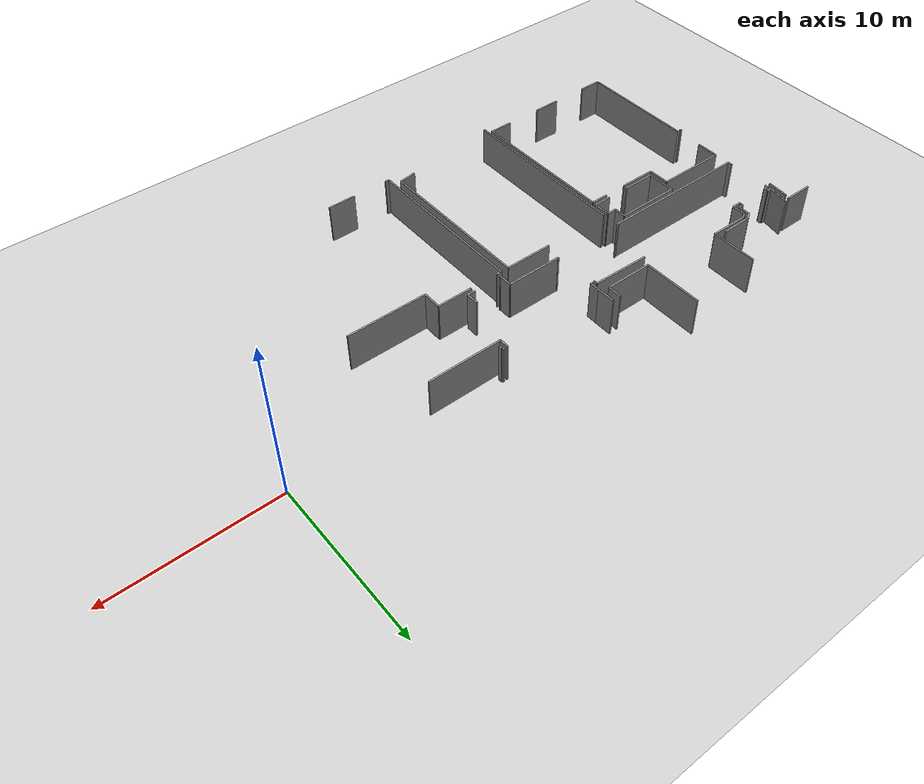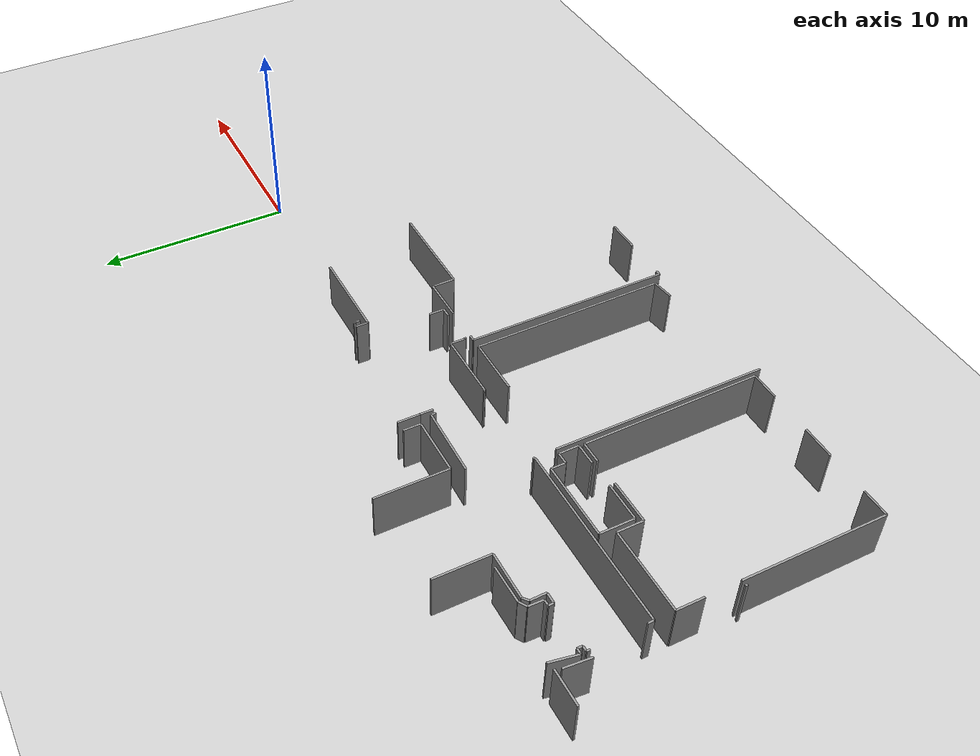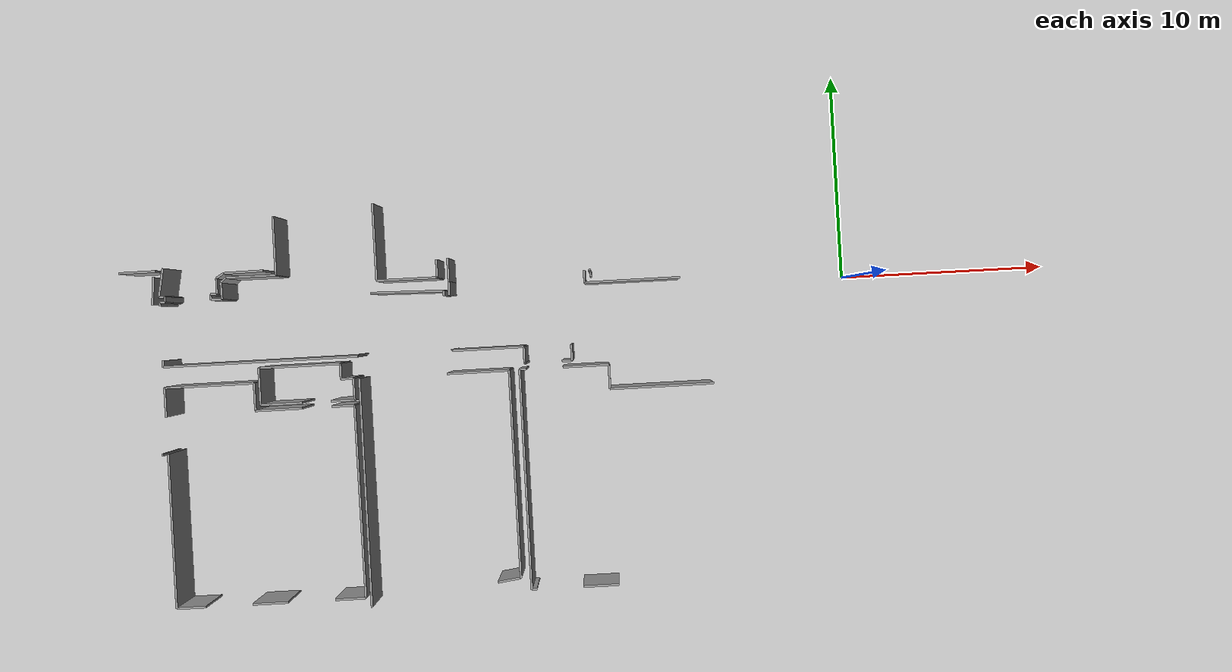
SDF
<sdf version="1.6">
 <world name="default">
  <model name="ground_plane">
   <static>1</static>
   <link name="link">
    <collision name="collision">
     <geometry><plane><normal>0 0 1</normal><size>100 100</size></plane></geometry>
     <surface><friction><ode><mu>100</mu><mu2>50</mu2></ode></friction></surface>
    </collision>
    <visual name="visual">
     <cast_shadows>0</cast_shadows>
     <geometry><plane><normal>0 0 1</normal><size>100 100</size></plane></geometry>
     <material>
      <script><uri>file://media/materials/scripts/gazebo.material</uri><name>Gazebo/Grey</name></script>
     </material>
    </visual>
   </link>
  </model>
  <model name="0510032268_A_40_1_102">
   <static>1</static>
   <link name="Wall_41">
    <collision name="Wall_41_Collision">
     <geometry><box><size>1.77971319931 0.1 2.5</size></box></geometry>
     <pose>0.889856599653 0 1.25 0 0 0</pose>
    </collision>
    <visual name="Wall_41_Visual">
     <pose>0.889856599653 0 1.25 0 0 0</pose>
     <geometry><box><size>1.77971319931 0.1 2.5</size></box></geometry>
     <material>
      <script><uri>file://media/materials/scripts/gazebo.material</uri><name>Gazebo/Grey</name></script>
      <ambient>1 1 1 1</ambient>
     </material>
    </visual>
    <pose>14.3522227371 -12.6432257778 0 0 0 3.14159265359</pose>
   </link>
   <link name="Wall_58">
    <collision name="Wall_58_Collision">
     <geometry><box><size>1.34798866629 0.1 2.5</size></box></geometry>
     <pose>0.673994333147 0 1.25 0 0 0</pose>
    </collision>
    <visual name="Wall_58_Visual">
     <pose>0.673994333147 0 1.25 0 0 0</pose>
     <geometry><box><size>1.34798866629 0.1 2.5</size></box></geometry>
     <material>
      <script><uri>file://media/materials/scripts/gazebo.material</uri><name>Gazebo/Grey</name></script>
      <ambient>1 1 1 1</ambient>
     </material>
    </visual>
    <pose>14.2360551257 -12.9222819636 0 0 0 -1.65708183347</pose>
   </link>
   <link name="Wall_64">
    <collision name="Wall_64_Collision">
     <geometry><box><size>0.117169047215 0.1 2.5</size></box></geometry>
     <pose>0.0585845236076 0 1.25 0 0 0</pose>
    </collision>
    <visual name="Wall_64_Visual">
     <pose>0.0585845236076 0 1.25 0 0 0</pose>
     <geometry><box><size>0.117169047215 0.1 2.5</size></box></geometry>
     <material>
      <script><uri>file://media/materials/scripts/gazebo.material</uri><name>Gazebo/Grey</name></script>
      <ambient>1 1 1 1</ambient>
     </material>
    </visual>
    <pose>14.2079971561 -21.4620614355 0 0 0 -1.63476971479</pose>
   </link>
   <link name="Wall_86">
    <collision name="Wall_86_Collision">
     <geometry><box><size>1.47272600314 0.1 2.5</size></box></geometry>
     <pose>0.736363001568 0 1.25 0 0 0</pose>
    </collision>
    <visual name="Wall_86_Visual">
     <pose>0.736363001568 0 1.25 0 0 0</pose>
     <geometry><box><size>1.47272600314 0.1 2.5</size></box></geometry>
     <material>
      <script><uri>file://media/materials/scripts/gazebo.material</uri><name>Gazebo/Grey</name></script>
      <ambient>1 1 1 1</ambient>
     </material>
    </visual>
    <pose>23.6273495376 -28.962426443 0 0 0 3.14159265359</pose>
   </link>
   <link name="Wall_87">
    <collision name="Wall_87_Collision">
     <geometry><box><size>1.7012524519 0.1 2.5</size></box></geometry>
     <pose>0.850626225949 0 1.25 0 0 0</pose>
    </collision>
    <visual name="Wall_87_Visual">
     <pose>0.850626225949 0 1.25 0 0 0</pose>
     <geometry><box><size>1.7012524519 0.1 2.5</size></box></geometry>
     <material>
      <script><uri>file://media/materials/scripts/gazebo.material</uri><name>Gazebo/Grey</name></script>
      <ambient>1 1 1 1</ambient>
     </material>
    </visual>
    <pose>19.8693590468 -28.962426443 0 0 0 3.14159265359</pose>
   </link>
   <link name="Wall_88">
    <collision name="Wall_88_Collision">
     <geometry><box><size>1.42752854994 0.1 2.5</size></box></geometry>
     <pose>0.713764274968 0 1.25 0 0 0</pose>
    </collision>
    <visual name="Wall_88_Visual">
     <pose>0.713764274968 0 1.25 0 0 0</pose>
     <geometry><box><size>1.42752854994 0.1 2.5</size></box></geometry>
     <material>
      <script><uri>file://media/materials/scripts/gazebo.material</uri><name>Gazebo/Grey</name></script>
      <ambient>1 1 1 1</ambient>
     </material>
    </visual>
    <pose>15.9034094877 -28.962426443 0 0 0 3.14159265359</pose>
   </link>
   <link name="Wall_89">
    <collision name="Wall_89_Collision">
     <geometry><box><size>7.46900610039 0.1 2.5</size></box></geometry>
     <pose>3.73450305019 0 1.25 0 0 0</pose>
    </collision>
    <visual name="Wall_89_Visual">
     <pose>3.73450305019 0 1.25 0 0 0</pose>
     <geometry><box><size>7.46900610039 0.1 2.5</size></box></geometry>
     <material>
      <script><uri>file://media/materials/scripts/gazebo.material</uri><name>Gazebo/Grey</name></script>
      <ambient>1 1 1 1</ambient>
     </material>
    </visual>
    <pose>14.4758809377 -28.962426443 0 0 0 1.57079632679</pose>
   </link>
   <link name="Wall_90">
    <collision name="Wall_90_Collision">
     <geometry><box><size>1.41318216732 0.1 2.5</size></box></geometry>
     <pose>0.70659108366 0 1.25 0 0 0</pose>
    </collision>
    <visual name="Wall_90_Visual">
     <pose>0.70659108366 0 1.25 0 0 0</pose>
     <geometry><box><size>1.41318216732 0.1 2.5</size></box></geometry>
     <material>
      <script><uri>file://media/materials/scripts/gazebo.material</uri><name>Gazebo/Grey</name></script>
      <ambient>1 1 1 1</ambient>
     </material>
    </visual>
    <pose>14.4758809377 -19.7049469628 0 0 0 1.57079632679</pose>
   </link>
   <link name="Wall_91">
    <collision name="Wall_91_Collision">
     <geometry><box><size>4.32752918473 0.1 2.5</size></box></geometry>
     <pose>2.16376459237 0 1.25 0 0 0</pose>
    </collision>
    <visual name="Wall_91_Visual">
     <pose>2.16376459237 0 1.25 0 0 0</pose>
     <geometry><box><size>4.32752918473 0.1 2.5</size></box></geometry>
     <material>
      <script><uri>file://media/materials/scripts/gazebo.material</uri><name>Gazebo/Grey</name></script>
      <ambient>1 1 1 1</ambient>
     </material>
    </visual>
    <pose>14.4758809377 -18.2917647955 0 0 0 0.0</pose>
   </link>
   <link name="Wall_92">
    <collision name="Wall_92_Collision">
     <geometry><box><size>1.34221200906 0.1 2.5</size></box></geometry>
     <pose>0.671106004532 0 1.25 0 0 0</pose>
    </collision>
    <visual name="Wall_92_Visual">
     <pose>0.671106004532 0 1.25 0 0 0</pose>
     <geometry><box><size>1.34221200906 0.1 2.5</size></box></geometry>
     <material>
      <script><uri>file://media/materials/scripts/gazebo.material</uri><name>Gazebo/Grey</name></script>
      <ambient>1 1 1 1</ambient>
     </material>
    </visual>
    <pose>18.8034101225 -18.2917647955 0 0 0 -1.57079632679</pose>
   </link>
   <link name="Wall_93">
    <collision name="Wall_93_Collision">
     <geometry><box><size>2.26723629 0.1 2.5</size></box></geometry>
     <pose>1.133618145 0 1.25 0 0 0</pose>
    </collision>
    <visual name="Wall_93_Visual">
     <pose>1.133618145 0 1.25 0 0 0</pose>
     <geometry><box><size>2.26723629 0.1 2.5</size></box></geometry>
     <material>
      <script><uri>file://media/materials/scripts/gazebo.material</uri><name>Gazebo/Grey</name></script>
      <ambient>1 1 1 1</ambient>
     </material>
    </visual>
    <pose>18.8034101225 -19.6339768046 0 0 0 0.0</pose>
   </link>
   <link name="Wall_94">
    <collision name="Wall_94_Collision">
     <geometry><box><size>1.11063854099 0.1 2.5</size></box></geometry>
     <pose>0.555319270493 0 1.25 0 0 0</pose>
    </collision>
    <visual name="Wall_94_Visual">
     <pose>0.555319270493 0 1.25 0 0 0</pose>
     <geometry><box><size>1.11063854099 0.1 2.5</size></box></geometry>
     <material>
      <script><uri>file://media/materials/scripts/gazebo.material</uri><name>Gazebo/Grey</name></script>
      <ambient>1 1 1 1</ambient>
     </material>
    </visual>
    <pose>22.482178111 -19.6339768046 0 0 0 0.0</pose>
   </link>
   <link name="Wall_95">
    <collision name="Wall_95_Collision">
     <geometry><box><size>9.32851355672 0.1 2.5</size></box></geometry>
     <pose>4.66425677836 0 1.25 0 0 0</pose>
    </collision>
    <visual name="Wall_95_Visual">
     <pose>4.66425677836 0 1.25 0 0 0</pose>
     <geometry><box><size>9.32851355672 0.1 2.5</size></box></geometry>
     <material>
      <script><uri>file://media/materials/scripts/gazebo.material</uri><name>Gazebo/Grey</name></script>
      <ambient>1 1 1 1</ambient>
     </material>
    </visual>
    <pose>23.592816652 -19.6339768046 0 0 0 -1.56709445465</pose>
   </link>
   <link name="Wall_96">
    <collision name="Wall_96_Collision">
     <geometry><box><size>0.248205115184 0.1 2.5</size></box></geometry>
     <pose>0.124102557592 0 1.25 0 0 0</pose>
    </collision>
    <visual name="Wall_96_Visual">
     <pose>0.124102557592 0 1.25 0 0 0</pose>
     <geometry><box><size>0.248205115184 0.1 2.5</size></box></geometry>
     <material>
      <script><uri>file://media/materials/scripts/gazebo.material</uri><name>Gazebo/Grey</name></script>
      <ambient>1 1 1 1</ambient>
     </material>
    </visual>
    <pose>28.203591674 -14.3506992275 0 0 0 -1.57079632679</pose>
   </link>
   <link name="Wall_97">
    <collision name="Wall_97_Collision">
     <geometry><box><size>0.0881096419118 0.1 2.5</size></box></geometry>
     <pose>0.0440548209559 0 1.25 0 0 0</pose>
    </collision>
    <visual name="Wall_97_Visual">
     <pose>0.0440548209559 0 1.25 0 0 0</pose>
     <geometry><box><size>0.0881096419118 0.1 2.5</size></box></geometry>
     <material>
      <script><uri>file://media/materials/scripts/gazebo.material</uri><name>Gazebo/Grey</name></script>
      <ambient>1 1 1 1</ambient>
     </material>
    </visual>
    <pose>23.8750468162 -17.187982048 0 0 0 -1.57079632679</pose>
   </link>
   <link name="Wall_98">
    <collision name="Wall_98_Collision">
     <geometry><box><size>9.40475208054 0.1 2.5</size></box></geometry>
     <pose>4.70237604027 0 1.25 0 0 0</pose>
    </collision>
    <visual name="Wall_98_Visual">
     <pose>4.70237604027 0 1.25 0 0 0</pose>
     <geometry><box><size>9.40475208054 0.1 2.5</size></box></geometry>
     <material>
      <script><uri>file://media/materials/scripts/gazebo.material</uri><name>Gazebo/Grey</name></script>
      <ambient>1 1 1 1</ambient>
     </material>
    </visual>
    <pose>23.8750468162 -17.2760916899 0 0 0 3.14159265359</pose>
   </link>
   <link name="Wall_99">
    <collision name="Wall_99_Collision">
     <geometry><box><size>0.303432340301 0.1 2.5</size></box></geometry>
     <pose>0.151716170151 0 1.25 0 0 0</pose>
    </collision>
    <visual name="Wall_99_Visual">
     <pose>0.151716170151 0 1.25 0 0 0</pose>
     <geometry><box><size>0.303432340301 0.1 2.5</size></box></geometry>
     <material>
      <script><uri>file://media/materials/scripts/gazebo.material</uri><name>Gazebo/Grey</name></script>
      <ambient>1 1 1 1</ambient>
     </material>
    </visual>
    <pose>14.4702947356 -17.2760916899 0 0 0 1.57079632679</pose>
   </link>
   <link name="Wall_100">
    <collision name="Wall_100_Collision">
     <geometry><box><size>0.172791387092 0.1 2.5</size></box></geometry>
     <pose>0.086395693546 0 1.25 0 0 0</pose>
    </collision>
    <visual name="Wall_100_Visual">
     <pose>0.086395693546 0 1.25 0 0 0</pose>
     <geometry><box><size>0.172791387092 0.1 2.5</size></box></geometry>
     <material>
      <script><uri>file://media/materials/scripts/gazebo.material</uri><name>Gazebo/Grey</name></script>
      <ambient>1 1 1 1</ambient>
     </material>
    </visual>
    <pose>14.4702947356 -14.3289892148 0 0 0 1.57079632679</pose>
   </link>
   <link name="Wall_101">
    <collision name="Wall_101_Collision">
     <geometry><box><size>0.264455884873 0.1 2.5</size></box></geometry>
     <pose>0.132227942437 0 1.25 0 0 0</pose>
    </collision>
    <visual name="Wall_101_Visual">
     <pose>0.132227942437 0 1.25 0 0 0</pose>
     <geometry><box><size>0.264455884873 0.1 2.5</size></box></geometry>
     <material>
      <script><uri>file://media/materials/scripts/gazebo.material</uri><name>Gazebo/Grey</name></script>
      <ambient>1 1 1 1</ambient>
     </material>
    </visual>
    <pose>14.4702947356 -14.1561978277 0 0 0 0.0</pose>
   </link>
   <link name="Wall_102">
    <collision name="Wall_102_Collision">
     <geometry><box><size>0.257219213996 0.1 2.5</size></box></geometry>
     <pose>0.128609606998 0 1.25 0 0 0</pose>
    </collision>
    <visual name="Wall_102_Visual">
     <pose>0.128609606998 0 1.25 0 0 0</pose>
     <geometry><box><size>0.257219213996 0.1 2.5</size></box></geometry>
     <material>
      <script><uri>file://media/materials/scripts/gazebo.material</uri><name>Gazebo/Grey</name></script>
      <ambient>1 1 1 1</ambient>
     </material>
    </visual>
    <pose>14.7347506205 -14.1561978277 0 0 0 1.57079632679</pose>
   </link>
   <link name="Wall_103">
    <collision name="Wall_103_Collision">
     <geometry><box><size>0.283880633018 0.1 2.5</size></box></geometry>
     <pose>0.141940316509 0 1.25 0 0 0</pose>
    </collision>
    <visual name="Wall_103_Visual">
     <pose>0.141940316509 0 1.25 0 0 0</pose>
     <geometry><box><size>0.283880633018 0.1 2.5</size></box></geometry>
     <material>
      <script><uri>file://media/materials/scripts/gazebo.material</uri><name>Gazebo/Grey</name></script>
      <ambient>1 1 1 1</ambient>
     </material>
    </visual>
    <pose>14.7347506205 -13.8989786137 0 0 0 3.14159265359</pose>
   </link>
   <link name="Wall_104">
    <collision name="Wall_104_Collision">
     <geometry><box><size>1.40958289278 0.1 2.5</size></box></geometry>
     <pose>0.704791446388 0 1.25 0 0 0</pose>
    </collision>
    <visual name="Wall_104_Visual">
     <pose>0.704791446388 0 1.25 0 0 0</pose>
     <geometry><box><size>1.40958289278 0.1 2.5</size></box></geometry>
     <material>
      <script><uri>file://media/materials/scripts/gazebo.material</uri><name>Gazebo/Grey</name></script>
      <ambient>1 1 1 1</ambient>
     </material>
    </visual>
    <pose>14.4508699875 -13.8989786137 0 0 0 1.38618978135</pose>
   </link>
   <link name="Wall_109">
    <collision name="Wall_109_Collision">
     <geometry><box><size>1.89506619879 0.1 2.5</size></box></geometry>
     <pose>0.947533099395 0 1.25 0 0 0</pose>
    </collision>
    <visual name="Wall_109_Visual">
     <pose>0.947533099395 0 1.25 0 0 0</pose>
     <geometry><box><size>1.89506619879 0.1 2.5</size></box></geometry>
     <material>
      <script><uri>file://media/materials/scripts/gazebo.material</uri><name>Gazebo/Grey</name></script>
      <ambient>1 1 1 1</ambient>
     </material>
    </visual>
    <pose>19.5263154554 -12.8972710133 0 0 0 -3.13274925556</pose>
   </link>
   <link name="Wall_110">
    <collision name="Wall_110_Collision">
     <geometry><box><size>0.423795498622 0.1 2.5</size></box></geometry>
     <pose>0.211897749311 0 1.25 0 0 0</pose>
    </collision>
    <visual name="Wall_110_Visual">
     <pose>0.211897749311 0 1.25 0 0 0</pose>
     <geometry><box><size>0.423795498622 0.1 2.5</size></box></geometry>
     <material>
      <script><uri>file://media/materials/scripts/gazebo.material</uri><name>Gazebo/Grey</name></script>
      <ambient>1 1 1 1</ambient>
     </material>
    </visual>
    <pose>17.6313233586 -12.9140296196 0 0 0 -2.58092925938</pose>
   </link>
   <link name="Wall_111">
    <collision name="Wall_111_Collision">
     <geometry><box><size>0.76000817541 0.1 2.5</size></box></geometry>
     <pose>0.380004087705 0 1.25 0 0 0</pose>
    </collision>
    <visual name="Wall_111_Visual">
     <pose>0.380004087705 0 1.25 0 0 0</pose>
     <geometry><box><size>0.76000817541 0.1 2.5</size></box></geometry>
     <material>
      <script><uri>file://media/materials/scripts/gazebo.material</uri><name>Gazebo/Grey</name></script>
      <ambient>1 1 1 1</ambient>
     </material>
    </visual>
    <pose>17.2724098749 -13.1393820899 0 0 0 -1.6037110607</pose>
   </link>
   <link name="Wall_112">
    <collision name="Wall_112_Collision">
     <geometry><box><size>0.308891583244 0.1 2.5</size></box></geometry>
     <pose>0.154445791622 0 1.25 0 0 0</pose>
    </collision>
    <visual name="Wall_112_Visual">
     <pose>0.154445791622 0 1.25 0 0 0</pose>
     <geometry><box><size>0.308891583244 0.1 2.5</size></box></geometry>
     <material>
      <script><uri>file://media/materials/scripts/gazebo.material</uri><name>Gazebo/Grey</name></script>
      <ambient>1 1 1 1</ambient>
     </material>
    </visual>
    <pose>17.2473989247 -13.8989786137 0 0 0 3.14159265359</pose>
   </link>
   <link name="Wall_113">
    <collision name="Wall_113_Collision">
     <geometry><box><size>0.259005261317 0.1 2.5</size></box></geometry>
     <pose>0.129502630659 0 1.25 0 0 0</pose>
    </collision>
    <visual name="Wall_113_Visual">
     <pose>0.129502630659 0 1.25 0 0 0</pose>
     <geometry><box><size>0.259005261317 0.1 2.5</size></box></geometry>
     <material>
      <script><uri>file://media/materials/scripts/gazebo.material</uri><name>Gazebo/Grey</name></script>
      <ambient>1 1 1 1</ambient>
     </material>
    </visual>
    <pose>16.9385073414 -13.8989786137 0 0 0 -1.53843881615</pose>
   </link>
   <link name="Wall_114">
    <collision name="Wall_114_Collision">
     <geometry><box><size>0.542623356673 0.1 2.5</size></box></geometry>
     <pose>0.271311678336 0 1.25 0 0 0</pose>
    </collision>
    <visual name="Wall_114_Visual">
     <pose>0.271311678336 0 1.25 0 0 0</pose>
     <geometry><box><size>0.542623356673 0.1 2.5</size></box></geometry>
     <material>
      <script><uri>file://media/materials/scripts/gazebo.material</uri><name>Gazebo/Grey</name></script>
      <ambient>1 1 1 1</ambient>
     </material>
    </visual>
    <pose>16.9468866445 -14.1578482965 0 0 0 0.0</pose>
   </link>
   <link name="Wall_115">
    <collision name="Wall_115_Collision">
     <geometry><box><size>0.801668225137 0.1 2.5</size></box></geometry>
     <pose>0.400834112569 0 1.25 0 0 0</pose>
    </collision>
    <visual name="Wall_115_Visual">
     <pose>0.400834112569 0 1.25 0 0 0</pose>
     <geometry><box><size>0.801668225137 0.1 2.5</size></box></geometry>
     <material>
      <script><uri>file://media/materials/scripts/gazebo.material</uri><name>Gazebo/Grey</name></script>
      <ambient>1 1 1 1</ambient>
     </material>
    </visual>
    <pose>17.4895100012 -14.1578482965 0 0 0 1.59170251536</pose>
   </link>
   <link name="Wall_116">
    <collision name="Wall_116_Collision">
     <geometry><box><size>0.343216037712 0.1 2.5</size></box></geometry>
     <pose>0.171608018856 0 1.25 0 0 0</pose>
    </collision>
    <visual name="Wall_116_Visual">
     <pose>0.171608018856 0 1.25 0 0 0</pose>
     <geometry><box><size>0.343216037712 0.1 2.5</size></box></geometry>
     <material>
      <script><uri>file://media/materials/scripts/gazebo.material</uri><name>Gazebo/Grey</name></script>
      <ambient>1 1 1 1</ambient>
     </material>
    </visual>
    <pose>17.472751395 -13.3563552571 0 0 0 0.716289726003</pose>
   </link>
   <link name="Wall_117">
    <collision name="Wall_117_Collision">
     <geometry><box><size>2.41253575138 0.1 2.5</size></box></geometry>
     <pose>1.20626787569 0 1.25 0 0 0</pose>
    </collision>
    <visual name="Wall_117_Visual">
     <pose>1.20626787569 0 1.25 0 0 0</pose>
     <geometry><box><size>2.41253575138 0.1 2.5</size></box></geometry>
     <material>
      <script><uri>file://media/materials/scripts/gazebo.material</uri><name>Gazebo/Grey</name></script>
      <ambient>1 1 1 1</ambient>
     </material>
    </visual>
    <pose>17.7316210778 -13.1310027868 0 0 0 -0.00694652546088</pose>
   </link>
   <link name="Wall_118">
    <collision name="Wall_118_Collision">
     <geometry><box><size>2.85494206765 0.1 2.5</size></box></geometry>
     <pose>1.42747103383 0 1.25 0 0 0</pose>
    </collision>
    <visual name="Wall_118_Visual">
     <pose>1.42747103383 0 1.25 0 0 0</pose>
     <geometry><box><size>2.85494206765 0.1 2.5</size></box></geometry>
     <material>
      <script><uri>file://media/materials/scripts/gazebo.material</uri><name>Gazebo/Grey</name></script>
      <ambient>1 1 1 1</ambient>
     </material>
    </visual>
    <pose>20.1440986219 -13.147761393 0 0 0 1.56790577586</pose>
   </link>
   <link name="Wall_123">
    <collision name="Wall_123_Collision">
     <geometry><box><size>3.5360582979 0.1 2.5</size></box></geometry>
     <pose>1.76802914895 0 1.25 0 0 0</pose>
    </collision>
    <visual name="Wall_123_Visual">
     <pose>1.76802914895 0 1.25 0 0 0</pose>
     <geometry><box><size>3.5360582979 0.1 2.5</size></box></geometry>
     <material>
      <script><uri>file://media/materials/scripts/gazebo.material</uri><name>Gazebo/Grey</name></script>
      <ambient>1 1 1 1</ambient>
     </material>
    </visual>
    <pose>24.6685414299 -14.2662714005 0 0 0 -0.02387852336</pose>
   </link>
   <link name="Wall_124">
    <collision name="Wall_124_Collision">
     <geometry><box><size>1.13069808482 0.1 2.5</size></box></geometry>
     <pose>0.565349042411 0 1.25 0 0 0</pose>
    </collision>
    <visual name="Wall_124_Visual">
     <pose>0.565349042411 0 1.25 0 0 0</pose>
     <geometry><box><size>1.13069808482 0.1 2.5</size></box></geometry>
     <material>
      <script><uri>file://media/materials/scripts/gazebo.material</uri><name>Gazebo/Grey</name></script>
      <ambient>1 1 1 1</ambient>
     </material>
    </visual>
    <pose>23.6201128667 -19.3712983476 0 0 0 3.14159265359</pose>
   </link>
   <link name="Wall_125">
    <collision name="Wall_125_Collision">
     <geometry><box><size>2.02550609086 0.1 2.5</size></box></geometry>
     <pose>1.01275304543 0 1.25 0 0 0</pose>
    </collision>
    <visual name="Wall_125_Visual">
     <pose>1.01275304543 0 1.25 0 0 0</pose>
     <geometry><box><size>2.02550609086 0.1 2.5</size></box></geometry>
     <material>
      <script><uri>file://media/materials/scripts/gazebo.material</uri><name>Gazebo/Grey</name></script>
      <ambient>1 1 1 1</ambient>
     </material>
    </visual>
    <pose>21.0910868337 -19.3712983476 0 0 0 3.14159265359</pose>
   </link>
   <link name="Wall_126">
    <collision name="Wall_126_Collision">
     <geometry><box><size>1.78796554329 0.1 2.5</size></box></geometry>
     <pose>0.893982771645 0 1.25 0 0 0</pose>
    </collision>
    <visual name="Wall_126_Visual">
     <pose>0.893982771645 0 1.25 0 0 0</pose>
     <geometry><box><size>1.78796554329 0.1 2.5</size></box></geometry>
     <material>
      <script><uri>file://media/materials/scripts/gazebo.material</uri><name>Gazebo/Grey</name></script>
      <ambient>1 1 1 1</ambient>
     </material>
    </visual>
    <pose>19.0655807428 -19.3712983476 0 0 0 1.57079632679</pose>
   </link>
   <link name="Wall_127">
    <collision name="Wall_127_Collision">
     <geometry><box><size>3.94550913788 0.1 2.5</size></box></geometry>
     <pose>1.97275456894 0 1.25 0 0 0</pose>
    </collision>
    <visual name="Wall_127_Visual">
     <pose>1.97275456894 0 1.25 0 0 0</pose>
     <geometry><box><size>3.94550913788 0.1 2.5</size></box></geometry>
     <material>
      <script><uri>file://media/materials/scripts/gazebo.material</uri><name>Gazebo/Grey</name></script>
      <ambient>1 1 1 1</ambient>
     </material>
    </visual>
    <pose>19.0655807428 -17.5833328043 0 0 0 0.0</pose>
   </link>
   <link name="Wall_128">
    <collision name="Wall_128_Collision">
     <geometry><box><size>0.748804997112 0.1 2.5</size></box></geometry>
     <pose>0.374402498556 0 1.25 0 0 0</pose>
    </collision>
    <visual name="Wall_128_Visual">
     <pose>0.374402498556 0 1.25 0 0 0</pose>
     <geometry><box><size>0.748804997112 0.1 2.5</size></box></geometry>
     <material>
      <script><uri>file://media/materials/scripts/gazebo.material</uri><name>Gazebo/Grey</name></script>
      <ambient>1 1 1 1</ambient>
     </material>
    </visual>
    <pose>23.0110898807 -17.5833328043 0 0 0 -1.57079632679</pose>
   </link>
   <link name="Wall_129">
    <collision name="Wall_129_Collision">
     <geometry><box><size>0.595184439888 0.1 2.5</size></box></geometry>
     <pose>0.297592219944 0 1.25 0 0 0</pose>
    </collision>
    <visual name="Wall_129_Visual">
     <pose>0.297592219944 0 1.25 0 0 0</pose>
     <geometry><box><size>0.595184439888 0.1 2.5</size></box></geometry>
     <material>
      <script><uri>file://media/materials/scripts/gazebo.material</uri><name>Gazebo/Grey</name></script>
      <ambient>1 1 1 1</ambient>
     </material>
    </visual>
    <pose>23.0110898807 -18.3321378014 0 0 0 0.0</pose>
   </link>
   <link name="Wall_130">
    <collision name="Wall_130_Collision">
     <geometry><box><size>1.03925268635 0.1 2.5</size></box></geometry>
     <pose>0.519626343176 0 1.25 0 0 0</pose>
    </collision>
    <visual name="Wall_130_Visual">
     <pose>0.519626343176 0 1.25 0 0 0</pose>
     <geometry><box><size>1.03925268635 0.1 2.5</size></box></geometry>
     <material>
      <script><uri>file://media/materials/scripts/gazebo.material</uri><name>Gazebo/Grey</name></script>
      <ambient>1 1 1 1</ambient>
     </material>
    </visual>
    <pose>23.6062743206 -18.3321378014 0 0 0 -1.55748007057</pose>
   </link>
   <link name="Wall_131">
    <collision name="Wall_131_Collision">
     <geometry><box><size>1.11500196164 0.1 2.5</size></box></geometry>
     <pose>0.557500980822 0 1.25 0 0 0</pose>
    </collision>
    <visual name="Wall_131_Visual">
     <pose>0.557500980822 0 1.25 0 0 0</pose>
     <geometry><box><size>1.11500196164 0.1 2.5</size></box></geometry>
     <material>
      <script><uri>file://media/materials/scripts/gazebo.material</uri><name>Gazebo/Grey</name></script>
      <ambient>1 1 1 1</ambient>
     </material>
    </visual>
    <pose>31.1560264329 -28.403806235 0 0 0 -3.00452647928</pose>
   </link>
   <link name="Wall_132">
    <collision name="Wall_132_Collision">
     <geometry><box><size>11.0754073801 0.1 2.5</size></box></geometry>
     <pose>5.53770369007 0 1.25 0 0 0</pose>
    </collision>
    <visual name="Wall_132_Visual">
     <pose>5.53770369007 0 1.25 0 0 0</pose>
     <geometry><box><size>11.0754073801 0.1 2.5</size></box></geometry>
     <material>
      <script><uri>file://media/materials/scripts/gazebo.material</uri><name>Gazebo/Grey</name></script>
      <ambient>1 1 1 1</ambient>
     </material>
    </visual>
    <pose>23.8939637278 -29.4321752544 0 0 0 1.57079632679</pose>
   </link>
   <link name="Wall_133">
    <collision name="Wall_133_Collision">
     <geometry><box><size>2.98849115412 0.1 2.5</size></box></geometry>
     <pose>1.49424557706 0 1.25 0 0 0</pose>
    </collision>
    <visual name="Wall_133_Visual">
     <pose>1.49424557706 0 1.25 0 0 0</pose>
     <geometry><box><size>2.98849115412 0.1 2.5</size></box></geometry>
     <material>
      <script><uri>file://media/materials/scripts/gazebo.material</uri><name>Gazebo/Grey</name></script>
      <ambient>1 1 1 1</ambient>
     </material>
    </visual>
    <pose>28.1496340403 -18.3567678743 0 0 0 0.0</pose>
   </link>
   <link name="Wall_134">
    <collision name="Wall_134_Collision">
     <geometry><box><size>10.0470543084 0.1 2.5</size></box></geometry>
     <pose>5.0235271542 0 1.25 0 0 0</pose>
    </collision>
    <visual name="Wall_134_Visual">
     <pose>5.0235271542 0 1.25 0 0 0</pose>
     <geometry><box><size>10.0470543084 0.1 2.5</size></box></geometry>
     <material>
      <script><uri>file://media/materials/scripts/gazebo.material</uri><name>Gazebo/Grey</name></script>
      <ambient>1 1 1 1</ambient>
     </material>
    </visual>
    <pose>31.1381251944 -18.3567678743 0 0 0 -1.56901458586</pose>
   </link>
   <link name="Wall_135">
    <collision name="Wall_135_Collision">
     <geometry><box><size>1.12701626981 0.1 2.5</size></box></geometry>
     <pose>0.563508134907 0 1.25 0 0 0</pose>
    </collision>
    <visual name="Wall_135_Visual">
     <pose>0.563508134907 0 1.25 0 0 0</pose>
     <geometry><box><size>1.12701626981 0.1 2.5</size></box></geometry>
     <material>
      <script><uri>file://media/materials/scripts/gazebo.material</uri><name>Gazebo/Grey</name></script>
      <ambient>1 1 1 1</ambient>
     </material>
    </visual>
    <pose>28.4667779675 -13.91573722 0 0 0 1.57079632679</pose>
   </link>
   <link name="Wall_146">
    <collision name="Wall_146_Collision">
     <geometry><box><size>0.612196964407 0.1 2.5</size></box></geometry>
     <pose>0.306098482204 0 1.25 0 0 0</pose>
    </collision>
    <visual name="Wall_146_Visual">
     <pose>0.306098482204 0 1.25 0 0 0</pose>
     <geometry><box><size>0.612196964407 0.1 2.5</size></box></geometry>
     <material>
      <script><uri>file://media/materials/scripts/gazebo.material</uri><name>Gazebo/Grey</name></script>
      <ambient>1 1 1 1</ambient>
     </material>
    </visual>
    <pose>35.016345989 -13.7208549428 0 0 0 -1.57079632679</pose>
   </link>
   <link name="Wall_147">
    <collision name="Wall_147_Collision">
     <geometry><box><size>4.60861671671 0.1 2.5</size></box></geometry>
     <pose>2.30430835835 0 1.25 0 0 0</pose>
    </collision>
    <visual name="Wall_147_Visual">
     <pose>2.30430835835 0 1.25 0 0 0</pose>
     <geometry><box><size>4.60861671671 0.1 2.5</size></box></geometry>
     <material>
      <script><uri>file://media/materials/scripts/gazebo.material</uri><name>Gazebo/Grey</name></script>
      <ambient>1 1 1 1</ambient>
     </material>
    </visual>
    <pose>35.016345989 -14.3330519072 0 0 0 0.0</pose>
   </link>
   <link name="Wall_165">
    <collision name="Wall_165_Collision">
     <geometry><box><size>0.787146656848 0.1 2.5</size></box></geometry>
     <pose>0.393573328424 0 1.25 0 0 0</pose>
    </collision>
    <visual name="Wall_165_Visual">
     <pose>0.393573328424 0 1.25 0 0 0</pose>
     <geometry><box><size>0.787146656848 0.1 2.5</size></box></geometry>
     <material>
      <script><uri>file://media/materials/scripts/gazebo.material</uri><name>Gazebo/Grey</name></script>
      <ambient>1 1 1 1</ambient>
     </material>
    </visual>
    <pose>34.2053310142 -17.2745681802 0 0 0 -1.57079632679</pose>
   </link>
   <link name="Wall_166">
    <collision name="Wall_166_Collision">
     <geometry><box><size>0.486380458449 0.1 2.5</size></box></geometry>
     <pose>0.243190229225 0 1.25 0 0 0</pose>
    </collision>
    <visual name="Wall_166_Visual">
     <pose>0.243190229225 0 1.25 0 0 0</pose>
     <geometry><box><size>0.486380458449 0.1 2.5</size></box></geometry>
     <material>
      <script><uri>file://media/materials/scripts/gazebo.material</uri><name>Gazebo/Grey</name></script>
      <ambient>1 1 1 1</ambient>
     </material>
    </visual>
    <pose>34.2053310142 -18.0617148371 0 0 0 3.14159265359</pose>
   </link>
   <link name="Wall_167">
    <collision name="Wall_167_Collision">
     <geometry><box><size>0.076302442059 0.1 2.5</size></box></geometry>
     <pose>0.0381512210295 0 1.25 0 0 0</pose>
    </collision>
    <visual name="Wall_167_Visual">
     <pose>0.0381512210295 0 1.25 0 0 0</pose>
     <geometry><box><size>0.076302442059 0.1 2.5</size></box></geometry>
     <material>
      <script><uri>file://media/materials/scripts/gazebo.material</uri><name>Gazebo/Grey</name></script>
      <ambient>1 1 1 1</ambient>
     </material>
    </visual>
    <pose>31.9862122376 -18.0617148371 0 0 0 3.14159265359</pose>
   </link>
   <link name="Wall_168">
    <collision name="Wall_168_Collision">
     <geometry><box><size>0.802000876018 0.1 2.5</size></box></geometry>
     <pose>0.401000438009 0 1.25 0 0 0</pose>
    </collision>
    <visual name="Wall_168_Visual">
     <pose>0.401000438009 0 1.25 0 0 0</pose>
     <geometry><box><size>0.802000876018 0.1 2.5</size></box></geometry>
     <material>
      <script><uri>file://media/materials/scripts/gazebo.material</uri><name>Gazebo/Grey</name></script>
      <ambient>1 1 1 1</ambient>
     </material>
    </visual>
    <pose>31.9099097955 -18.0617148371 0 0 0 1.57079632679</pose>
   </link>
   <link name="Wall_169">
    <collision name="Wall_169_Collision">
     <geometry><box><size>3.45227288597 0.1 2.5</size></box></geometry>
     <pose>1.72613644299 0 1.25 0 0 0</pose>
    </collision>
    <visual name="Wall_169_Visual">
     <pose>1.72613644299 0 1.25 0 0 0</pose>
     <geometry><box><size>3.45227288597 0.1 2.5</size></box></geometry>
     <material>
      <script><uri>file://media/materials/scripts/gazebo.material</uri><name>Gazebo/Grey</name></script>
      <ambient>1 1 1 1</ambient>
     </material>
    </visual>
    <pose>31.9099097955 -17.2597139611 0 0 0 3.14159265359</pose>
   </link>
   <link name="Wall_170">
    <collision name="Wall_170_Collision">
     <geometry><box><size>0.0685579346287 0.1 2.5</size></box></geometry>
     <pose>0.0342789673144 0 1.25 0 0 0</pose>
    </collision>
    <visual name="Wall_170_Visual">
     <pose>0.0342789673144 0 1.25 0 0 0</pose>
     <geometry><box><size>0.0685579346287 0.1 2.5</size></box></geometry>
     <material>
      <script><uri>file://media/materials/scripts/gazebo.material</uri><name>Gazebo/Grey</name></script>
      <ambient>1 1 1 1</ambient>
     </material>
    </visual>
    <pose>28.4576369096 -17.2597139611 0 0 0 1.57079632679</pose>
   </link>
   <link name="Wall_171">
    <collision name="Wall_171_Collision">
     <geometry><box><size>0.666471206952 0.1 2.5</size></box></geometry>
     <pose>0.333235603476 0 1.25 0 0 0</pose>
    </collision>
    <visual name="Wall_171_Visual">
     <pose>0.333235603476 0 1.25 0 0 0</pose>
     <geometry><box><size>0.666471206952 0.1 2.5</size></box></geometry>
     <material>
      <script><uri>file://media/materials/scripts/gazebo.material</uri><name>Gazebo/Grey</name></script>
      <ambient>1 1 1 1</ambient>
     </material>
    </visual>
    <pose>28.4576369096 -14.5821457364 0 0 0 1.55708028853</pose>
   </link>
   <link name="Wall_172">
    <collision name="Wall_172_Collision">
     <geometry><box><size>3.74199363935 0.1 2.5</size></box></geometry>
     <pose>1.87099681967 0 1.25 0 0 0</pose>
    </collision>
    <visual name="Wall_172_Visual">
     <pose>1.87099681967 0 1.25 0 0 0</pose>
     <geometry><box><size>3.74199363935 0.1 2.5</size></box></geometry>
     <material>
      <script><uri>file://media/materials/scripts/gazebo.material</uri><name>Gazebo/Grey</name></script>
      <ambient>1 1 1 1</ambient>
     </material>
    </visual>
    <pose>24.989240213 -13.6801010595 0 0 0 1.57079632679</pose>
   </link>
   <link name="Wall_175">
    <collision name="Wall_175_Collision">
     <geometry><box><size>0.876525890142 0.1 2.5</size></box></geometry>
     <pose>0.438262945071 0 1.25 0 0 0</pose>
    </collision>
    <visual name="Wall_175_Visual">
     <pose>0.438262945071 0 1.25 0 0 0</pose>
     <geometry><box><size>0.876525890142 0.1 2.5</size></box></geometry>
     <material>
      <script><uri>file://media/materials/scripts/gazebo.material</uri><name>Gazebo/Grey</name></script>
      <ambient>1 1 1 1</ambient>
     </material>
    </visual>
    <pose>27.9198380001 -12.8138588595 0 0 0 -1.57079632679</pose>
   </link>
   <link name="Wall_176">
    <collision name="Wall_176_Collision">
     <geometry><box><size>2.93061583017 0.1 2.5</size></box></geometry>
     <pose>1.46530791509 0 1.25 0 0 0</pose>
    </collision>
    <visual name="Wall_176_Visual">
     <pose>1.46530791509 0 1.25 0 0 0</pose>
     <geometry><box><size>2.93061583017 0.1 2.5</size></box></geometry>
     <material>
      <script><uri>file://media/materials/scripts/gazebo.material</uri><name>Gazebo/Grey</name></script>
      <ambient>1 1 1 1</ambient>
     </material>
    </visual>
    <pose>27.9198380001 -13.6903847497 0 0 0 3.13808359205</pose>
   </link>
   <link name="Wall_214">
    <collision name="Wall_214_Collision">
     <geometry><box><size>0.242745872241 0.1 2.5</size></box></geometry>
     <pose>0.121372936121 0 1.25 0 0 0</pose>
    </collision>
    <visual name="Wall_214_Visual">
     <pose>0.121372936121 0 1.25 0 0 0</pose>
     <geometry><box><size>0.242745872241 0.1 2.5</size></box></geometry>
     <material>
      <script><uri>file://media/materials/scripts/gazebo.material</uri><name>Gazebo/Grey</name></script>
      <ambient>1 1 1 1</ambient>
     </material>
    </visual>
    <pose>35.3277767551 -14.0428233173 0 0 0 1.57079632679</pose>
   </link>
   <link name="Wall_215">
    <collision name="Wall_215_Collision">
     <geometry><box><size>0.0493871047603 0.1 2.5</size></box></geometry>
     <pose>0.0246935523802 0 1.25 0 0 0</pose>
    </collision>
    <visual name="Wall_215_Visual">
     <pose>0.0246935523802 0 1.25 0 0 0</pose>
     <geometry><box><size>0.0493871047603 0.1 2.5</size></box></geometry>
     <material>
      <script><uri>file://media/materials/scripts/gazebo.material</uri><name>Gazebo/Grey</name></script>
      <ambient>1 1 1 1</ambient>
     </material>
    </visual>
    <pose>35.3277767551 -13.8000774451 0 0 0 3.14159265359</pose>
   </link>
   <link name="Wall_216">
    <collision name="Wall_216_Collision">
     <geometry><box><size>0.104233452463 0.1 2.5</size></box></geometry>
     <pose>0.0521167262317 0 1.25 0 0 0</pose>
    </collision>
    <visual name="Wall_216_Visual">
     <pose>0.0521167262317 0 1.25 0 0 0</pose>
     <geometry><box><size>0.104233452463 0.1 2.5</size></box></geometry>
     <material>
      <script><uri>file://media/materials/scripts/gazebo.material</uri><name>Gazebo/Grey</name></script>
      <ambient>1 1 1 1</ambient>
     </material>
    </visual>
    <pose>35.2783896503 -13.8000774451 0 0 0 1.57079632679</pose>
   </link>
   <link name="Wall_221">
    <collision name="Wall_221_Collision">
     <geometry><box><size>1.75305178028 0.1 2.5</size></box></geometry>
     <pose>0.876525890142 0 1.25 0 0 0</pose>
    </collision>
    <visual name="Wall_221_Visual">
     <pose>0.876525890142 0 1.25 0 0 0</pose>
     <geometry><box><size>1.75305178028 0.1 2.5</size></box></geometry>
     <material>
      <script><uri>file://media/materials/scripts/gazebo.material</uri><name>Gazebo/Grey</name></script>
      <ambient>1 1 1 1</ambient>
     </material>
    </visual>
    <pose>35.8962997759 -28.9878182707 0 0 0 3.14159265359</pose>
   </link>
   <link name="Wall_222">
    <collision name="Wall_222_Collision">
     <geometry><box><size>0.258869682793 0.1 2.5</size></box></geometry>
     <pose>0.129434841396 0 1.25 0 0 0</pose>
    </collision>
    <visual name="Wall_222_Visual">
     <pose>0.129434841396 0 1.25 0 0 0</pose>
     <geometry><box><size>0.258869682793 0.1 2.5</size></box></geometry>
     <material>
      <script><uri>file://media/materials/scripts/gazebo.material</uri><name>Gazebo/Grey</name></script>
      <ambient>1 1 1 1</ambient>
     </material>
    </visual>
    <pose>31.9061010214 -28.9878182707 0 0 0 3.14159265359</pose>
   </link>
   <link name="Wall_223">
    <collision name="Wall_223_Collision">
     <geometry><box><size>10.6401914544 0.1 2.5</size></box></geometry>
     <pose>5.32009572719 0 1.25 0 0 0</pose>
    </collision>
    <visual name="Wall_223_Visual">
     <pose>5.32009572719 0 1.25 0 0 0</pose>
     <geometry><box><size>10.6401914544 0.1 2.5</size></box></geometry>
     <material>
      <script><uri>file://media/materials/scripts/gazebo.material</uri><name>Gazebo/Grey</name></script>
      <ambient>1 1 1 1</ambient>
     </material>
    </visual>
    <pose>31.6472313386 -28.9878182707 0 0 0 1.57079632679</pose>
   </link>
   <link name="Wall_224">
    <collision name="Wall_224_Collision">
     <geometry><box><size>0.308510705829 0.1 2.5</size></box></geometry>
     <pose>0.154255352915 0 1.25 0 0 0</pose>
    </collision>
    <visual name="Wall_224_Visual">
     <pose>0.154255352915 0 1.25 0 0 0</pose>
     <geometry><box><size>0.308510705829 0.1 2.5</size></box></geometry>
     <material>
      <script><uri>file://media/materials/scripts/gazebo.material</uri><name>Gazebo/Grey</name></script>
      <ambient>1 1 1 1</ambient>
     </material>
    </visual>
    <pose>31.6472313386 -18.3476268163 0 0 0 0.0</pose>
   </link>
   <link name="Wall_225">
    <collision name="Wall_225_Collision">
     <geometry><box><size>2.22115012283 0.1 2.5</size></box></geometry>
     <pose>1.11057506142 0 1.25 0 0 0</pose>
    </collision>
    <visual name="Wall_225_Visual">
     <pose>1.11057506142 0 1.25 0 0 0</pose>
     <geometry><box><size>2.22115012283 0.1 2.5</size></box></geometry>
     <material>
      <script><uri>file://media/materials/scripts/gazebo.material</uri><name>Gazebo/Grey</name></script>
      <ambient>1 1 1 1</ambient>
     </material>
    </visual>
    <pose>33.7407875275 -18.3476268163 0 0 0 0.0</pose>
   </link>
   <link name="Wall_226">
    <collision name="Wall_226_Collision">
     <geometry><box><size>1.17310243698 0.1 2.5</size></box></geometry>
     <pose>0.58655121849 0 1.25 0 0 0</pose>
    </collision>
    <visual name="Wall_226_Visual">
     <pose>0.58655121849 0 1.25 0 0 0</pose>
     <geometry><box><size>1.17310243698 0.1 2.5</size></box></geometry>
     <material>
      <script><uri>file://media/materials/scripts/gazebo.material</uri><name>Gazebo/Grey</name></script>
      <ambient>1 1 1 1</ambient>
     </material>
    </visual>
    <pose>35.9619376504 -18.3476268163 0 0 0 -1.57079632679</pose>
   </link>
   <link name="Wall_227">
    <collision name="Wall_227_Collision">
     <geometry><box><size>5.02326526208 0.1 2.5</size></box></geometry>
     <pose>2.51163263104 0 1.25 0 0 0</pose>
    </collision>
    <visual name="Wall_227_Visual">
     <pose>2.51163263104 0 1.25 0 0 0</pose>
     <geometry><box><size>5.02326526208 0.1 2.5</size></box></geometry>
     <material>
      <script><uri>file://media/materials/scripts/gazebo.material</uri><name>Gazebo/Grey</name></script>
      <ambient>1 1 1 1</ambient>
     </material>
    </visual>
    <pose>35.9619376504 -19.5207292533 0 0 0 0.0</pose>
   </link>
   <pose>-47.9 14.7321752544 0 0 0 0</pose>
  </model>
 </world>
</sdf>
